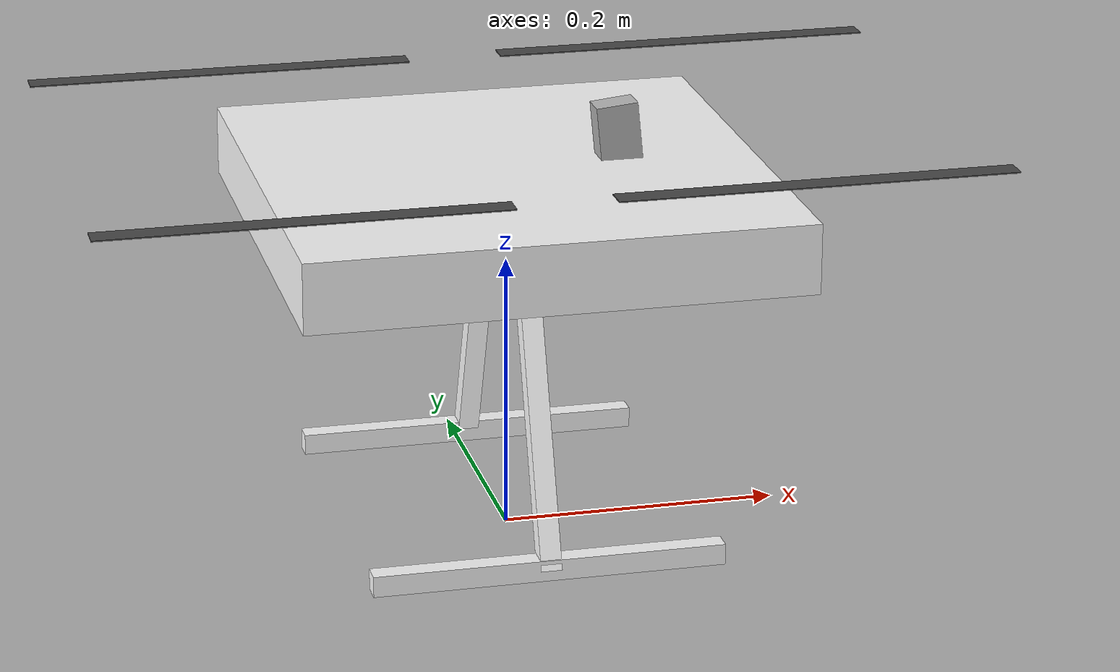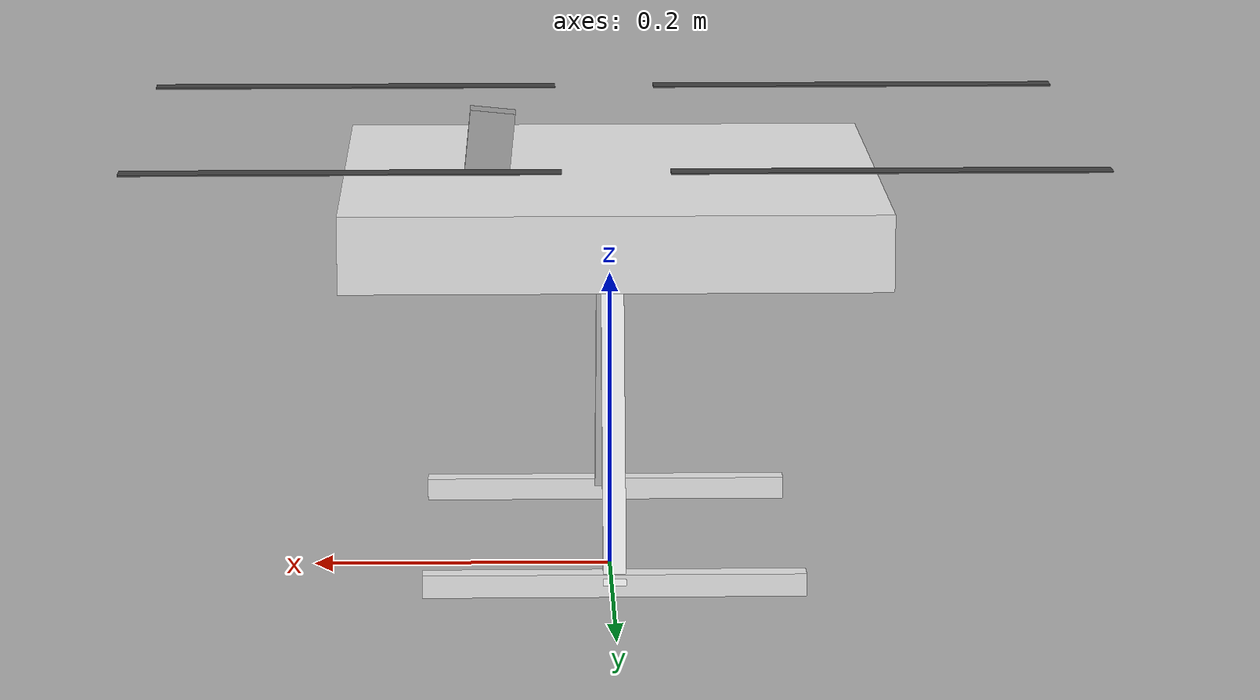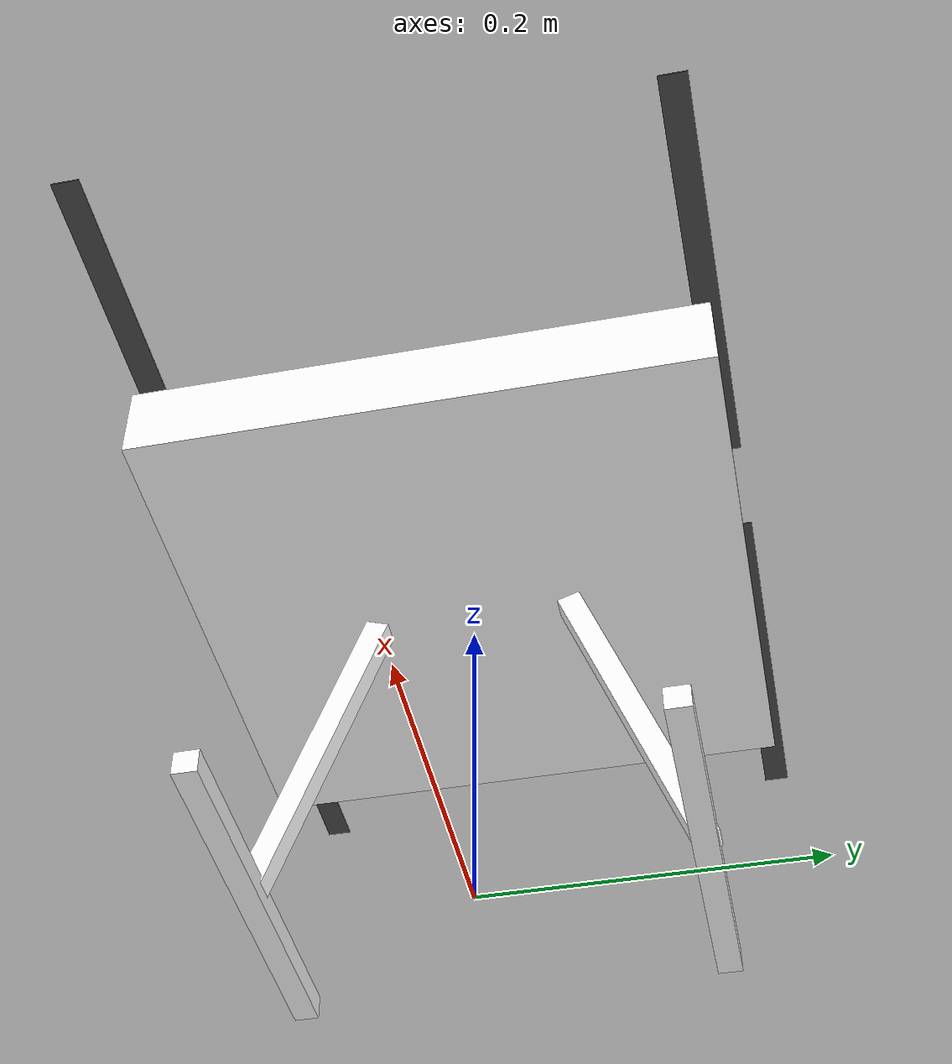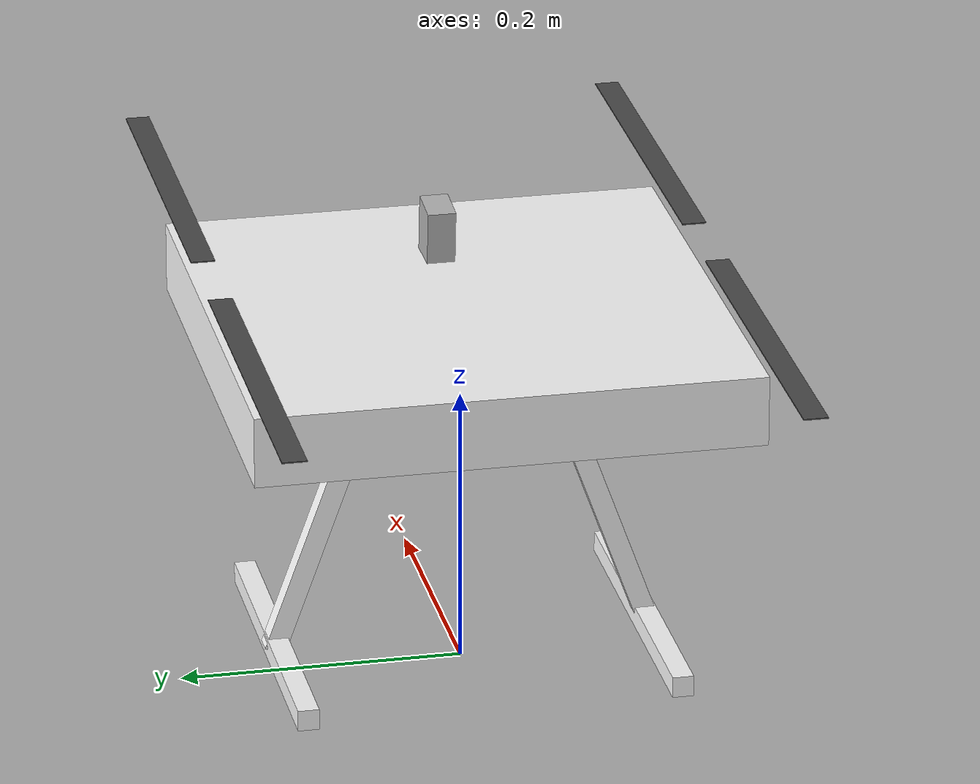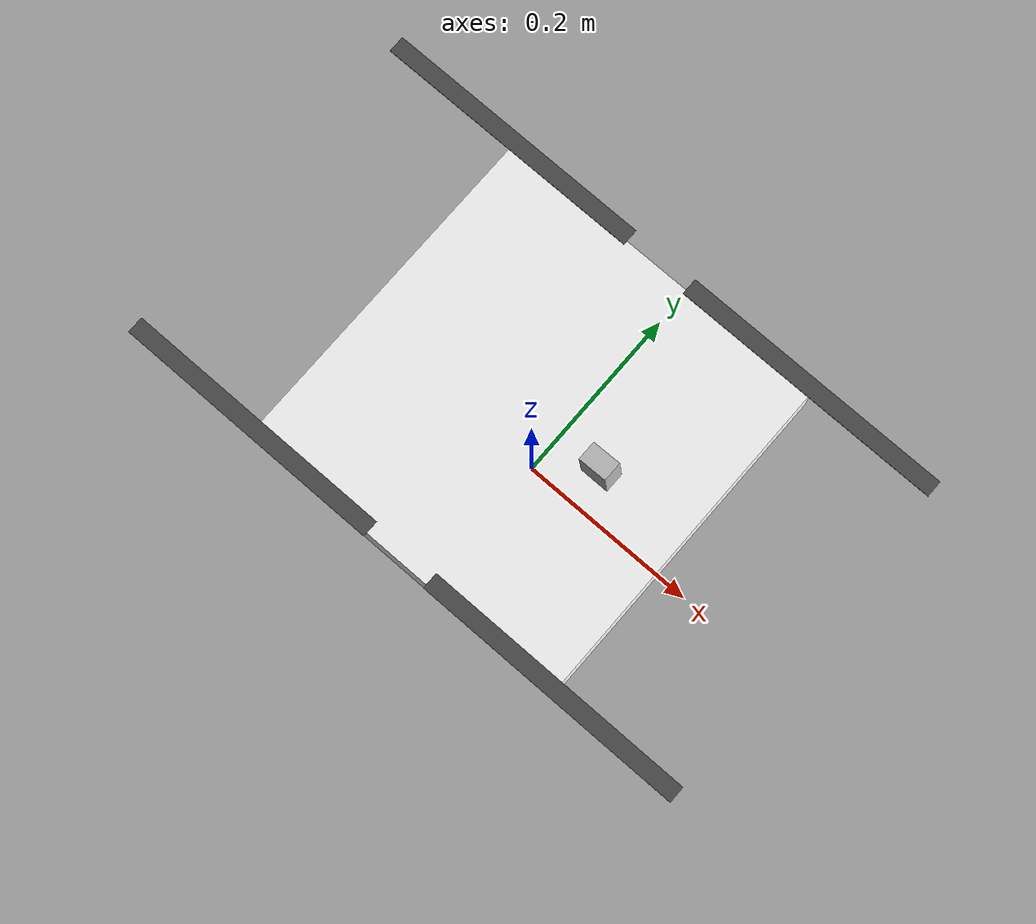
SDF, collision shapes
<?xml version="1.0" encoding="UTF-8"?>
<sdf version='1.9'>
  <model name='x500_base'>
<!-- ================== LW20 雷达，64线3D扫描安装在无人机正前方 ================== -->
<link name="lidar_sensor_link">
  <!-- Pose 相对于 base_link，放在无人机正前方并略向下倾 -->
  <pose relative_to="base_link">0.08 0 0.05 0 -0.1 0</pose>

  <!-- 惯性属性 -->
  <inertial>
    <mass>0.02</mass>
    <inertia>
      <ixx>0.000004</ixx>
      <iyy>0.000004</iyy>
      <izz>0.000002</izz>
      <ixy>0</ixy>
      <ixz>0</ixz>
      <iyz>0</iyz>
    </inertia>
  </inertial>

  <!-- 可视化模型 -->
  <visual name="lidar_visual">
    <geometry>
      <mesh>
        <uri>model://LW20/meshes/LW20.dae</uri>
      </mesh>
    </geometry>
  </visual>

  <!-- 碰撞体 -->
  <collision name="lidar_collision">
    <geometry>
      <box>
        <size>0.03 0.02 0.043</size>
      </box>
    </geometry>
  </collision>

  <!-- GPU LiDAR 传感器，64线3D扫描 -->
  <sensor name="front_lidar" type="gpu_lidar">
    <gz_frame_id>lidar_sensor_link</gz_frame_id>
    <update_rate>50</update_rate>

    <ray>
      <scan>
        <horizontal>
          <samples>360</samples> <!-- 水平360°扫描 -->
          <min_angle>-3.14</min_angle>
          <max_angle>3.14</max_angle>
        </horizontal>
        <vertical>
          <samples>64</samples> <!-- 垂直64线形成3D扫描 -->
          <min_angle>-0.35</min_angle> <!-- -20°，向下可见地面 -->
          <max_angle>0.35</max_angle>  <!-- +20°，向上可见障碍 -->
        </vertical>
      </scan>

      <range>
        <min>0.2</min>
        <max>20</max>
        <resolution>0.01</resolution>
      </range>
    </ray>

    <always_on>1</always_on>
    <visualize>true</visualize>
  </sensor>
</link>

<!-- 固定 joint，雷达随无人机移动 -->
<joint name="lidar_joint" type="fixed">
  <parent>base_link</parent>
  <child>lidar_sensor_link</child>
  <pose>0 0 0 0 0 0</pose>
</joint>
<!-- ================== LW20 雷达结束 ================== -->
    <pose>0 0 .24 0 0 0</pose>
    <self_collide>false</self_collide>
    <static>false</static>
    <link name="base_link">
      <inertial>
        <mass>2.0</mass>
        <inertia>
          <ixx>0.02166666666666667</ixx>
          <ixy>0</ixy>
          <ixz>0</ixz>
          <iyy>0.02166666666666667</iyy>
          <iyz>0</iyz>
          <izz>0.04000000000000001</izz>
        </inertia>
      </inertial>
      <gravity>true</gravity>
      <velocity_decay/>
      <visual name="base_link_visual">
        <pose>0 0 .025 0 0 3.141592654</pose>
        <geometry>
          <mesh>
            <scale>1 1 1</scale>
            <uri>model://x500_base/meshes/NXP-HGD-CF.dae</uri>
          </mesh>
        </geometry>
      </visual>
      <visual name="5010_motor_base_0">
        <pose>0.174 0.174 .032 0 0 -.45</pose>
        <geometry>
          <mesh>
            <scale>1 1 1</scale>
            <uri>model://x500_base/meshes/5010Base.dae</uri>
          </mesh>
        </geometry>
      </visual>
      <visual name="5010_motor_base_1">
        <pose>-0.174 0.174 .032 0 0 -.45</pose>
        <geometry>
          <mesh>
            <scale>1 1 1</scale>
            <uri>model://x500_base/meshes/5010Base.dae</uri>
          </mesh>
        </geometry>
      </visual>
      <visual name="5010_motor_base_2">
        <pose>0.174 -0.174 .032 0 0 -.45</pose>
        <geometry>
          <mesh>
            <scale>1 1 1</scale>
            <uri>model://x500_base/meshes/5010Base.dae</uri>
          </mesh>
        </geometry>
      </visual>
      <visual name="5010_motor_base_3">
        <pose>-0.174 -0.174 .032 0 0 -.45</pose>
        <geometry>
          <mesh>
            <scale>1 1 1</scale>
            <uri>model://x500_base/meshes/5010Base.dae</uri>
          </mesh>
        </geometry>
      </visual>
      <visual name="NXP_FMUK66_FRONT">
        <pose>0.047 .001 .043 1 0 1.57</pose>
        <cast_shadows>false</cast_shadows>
        <geometry>
          <plane>
            <normal>0 0 1</normal>
            <size>.013 .007</size>
          </plane>
        </geometry>
        <material>
          <diffuse>1.0 1.0 1.0</diffuse>
          <specular>1.0 1.0 1.0</specular>
          <pbr>
            <metal>
              <albedo_map>model://x500_base/materials/textures/nxp.png</albedo_map>
            </metal>
          </pbr>
        </material>
      </visual>
      <visual name="NXP_FMUK66_TOP">
        <pose>-0.023 0 .0515 0 0 -1.57</pose>
        <cast_shadows>false</cast_shadows>
        <geometry>
          <plane>
            <normal>0 0 1</normal>
            <size>.013 .007</size>
          </plane>
        </geometry>
        <material>
          <diffuse>1.0 1.0 1.0</diffuse>
          <specular>1.0 1.0 1.0</specular>
          <pbr>
            <metal>
              <albedo_map>model://x500_base/materials/textures/nxp.png</albedo_map>
            </metal>
          </pbr>
        </material>
      </visual>
      <visual name="RDDRONE_FMUK66_TOP">
        <pose>-.03 0 .0515 0 0 -1.57</pose>
        <cast_shadows>false</cast_shadows>
        <geometry>
          <plane>
            <normal>0 0 1</normal>
            <size>.032 .0034</size>
          </plane>
        </geometry>
        <material>
          <diffuse>1.0 1.0 1.0</diffuse>
          <specular>1.0 1.0 1.0</specular>
          <pbr>
            <metal>
              <albedo_map>model://x500_base/materials/textures/rd.png</albedo_map>
            </metal>
          </pbr>
        </material>
      </visual>
      <collision name="base_link_collision_0">
        <pose>0 0 .007 0 0 0</pose>
        <geometry>
          <box>
            <size>0.35355339059327373 0.35355339059327373 0.05</size>
          </box>
        </geometry>
        <surface>
          <contact>
            <ode>
              <min_depth>0.001</min_depth>
              <max_vel>0</max_vel>
            </ode>
          </contact>
          <friction>
            <ode/>
          </friction>
        </surface>
      </collision>
      <collision name="base_link_collision_1">
        <pose>0 -0.098 -.123 -0.35 0 0</pose>
        <geometry>
          <box>
            <size>0.015 0.015 0.21</size>
          </box>
        </geometry>
        <surface>
          <contact>
            <ode>
              <min_depth>0.001</min_depth>
              <max_vel>0</max_vel>
            </ode>
          </contact>
          <friction>
            <ode/>
          </friction>
        </surface>
      </collision>
      <collision name="base_link_collision_2">
        <pose>0 0.098 -.123 0.35 0 0</pose>
        <geometry>
          <box>
            <size>0.015 0.015 0.21</size>
          </box>
        </geometry>
        <surface>
          <contact>
            <ode>
              <min_depth>0.001</min_depth>
              <max_vel>0</max_vel>
            </ode>
          </contact>
          <friction>
            <ode/>
          </friction>
        </surface>
      </collision>
      <collision name="base_link_collision_3">
        <pose>0 -0.132 -.2195 0 0 0</pose>
        <geometry>
          <box>
            <size>0.25 0.015 0.015</size>
          </box>
        </geometry>
        <surface>
          <contact>
            <ode>
              <min_depth>0.001</min_depth>
              <max_vel>0</max_vel>
            </ode>
          </contact>
          <friction>
            <ode/>
          </friction>
        </surface>
      </collision>
      <collision name="base_link_collision_4">
        <pose>0 0.132 -.2195 0 0 0</pose>
        <geometry>
          <box>
            <size>0.25 0.015 0.015</size>
          </box>
        </geometry>
        <surface>
          <contact>
            <ode>
              <min_depth>0.001</min_depth>
              <max_vel>0</max_vel>
            </ode>
          </contact>
          <friction>
            <ode/>
          </friction>
        </surface>
      </collision>
      <sensor name="air_pressure_sensor" type="air_pressure">
        <always_on>1</always_on>
        <update_rate>50</update_rate>
        <air_pressure>
          <pressure>
            <noise type="gaussian">
              <mean>0</mean>
              <stddev>0.01</stddev>
            </noise>
          </pressure>
        </air_pressure>
      </sensor>
      <sensor name="imu_sensor" type="imu">
        <always_on>1</always_on>
        <update_rate>250</update_rate>
        <imu>
          <angular_velocity>
            <x>
              <noise type="gaussian">
                <mean>0</mean>
                <stddev>0.00018665</stddev>
                <dynamic_bias_stddev>3.8785e-05</dynamic_bias_stddev>
                <dynamic_bias_correlation_time>1000</dynamic_bias_correlation_time>
              </noise>
            </x>
            <y>
              <noise type="gaussian">
                <mean>0</mean>
                <stddev>0.00018665</stddev>
                <dynamic_bias_stddev>3.8785e-05</dynamic_bias_stddev>
                <dynamic_bias_correlation_time>1000</dynamic_bias_correlation_time>
              </noise>
            </y>
            <z>
              <noise type="gaussian">
                <mean>0</mean>
                <stddev>0.00018665</stddev>
                <dynamic_bias_stddev>3.8785e-05</dynamic_bias_stddev>
                <dynamic_bias_correlation_time>1000</dynamic_bias_correlation_time>
              </noise>
            </z>
          </angular_velocity>
          <linear_acceleration>
            <x>
              <noise type="gaussian">
                <mean>0</mean>
                <stddev>0.00186</stddev>
                <dynamic_bias_stddev>0.006</dynamic_bias_stddev>
                <dynamic_bias_correlation_time>300</dynamic_bias_correlation_time>
              </noise>
            </x>
            <y>
              <noise type="gaussian">
                <mean>0</mean>
                <stddev>0.00186</stddev>
                <dynamic_bias_stddev>0.006</dynamic_bias_stddev>
                <dynamic_bias_correlation_time>300</dynamic_bias_correlation_time>
              </noise>
            </y>
            <z>
              <noise type="gaussian">
                <mean>0</mean>
                <stddev>0.00186</stddev>
                <dynamic_bias_stddev>0.006</dynamic_bias_stddev>
                <dynamic_bias_correlation_time>300</dynamic_bias_correlation_time>
              </noise>
            </z>
          </linear_acceleration>
        </imu>
      </sensor>
      <sensor name="navsat_sensor" type="navsat">
        <always_on>1</always_on>
        <update_rate>30</update_rate>
      </sensor>
    </link>
    <link name="rotor_0">
      <gravity>true</gravity>
      <self_collide>false</self_collide>
      <velocity_decay/>
      <pose>0.174 -0.174 0.06 0 0 0</pose>
      <inertial>
          <mass>0.016076923076923075</mass>
          <inertia>
            <ixx>3.8464910483993325e-07</ixx>
            <iyy>2.6115851691700804e-05</iyy>
            <izz>2.649858234714004e-05</izz>
          </inertia>
        </inertial>
      <visual name="rotor_0_visual">
        <pose>-0.022 -0.14638461538461536 -0.016 0 0 0</pose>
        <geometry>
          <mesh>
            <scale>0.8461538461538461 0.8461538461538461 0.8461538461538461</scale>
            <uri>model://x500_base/meshes/1345_prop_ccw.stl</uri>
          </mesh>
        </geometry>
        <material>
          <script>
            <name>Gazebo/DarkGrey</name>
            <uri>file://media/materials/scripts/gazebo.material</uri>
          </script>
        </material>
      </visual>
      <visual name="rotor_0_visual_motor_bell">
        <pose>0 0 -.032 0 0 0</pose>
        <geometry>
          <mesh>
            <scale>1 1 1</scale>
            <uri>model://x500_base/meshes/5010Bell.dae</uri>
          </mesh>
        </geometry>
      </visual>
      <collision name="rotor_0_collision">
        <pose>0 0 0 0 0 0 </pose>
        <geometry>
          <box>
            <size>0.2792307692307692 0.016923076923076923 0.0008461538461538462</size>
          </box>
        </geometry>
        <surface>
          <contact>
            <ode>
              <min_depth>0.001</min_depth>
              <max_vel>0</max_vel>
            </ode>
          </contact>
          <friction>
            <ode/>
          </friction>
        </surface>
      </collision>
    </link>
    <joint name="rotor_0_joint" type="revolute">
      <parent>base_link</parent>
      <child>rotor_0</child>
      <axis>
        <xyz>0 0 1</xyz>
        <limit>
          <lower>-1e+16</lower>
          <upper>1e+16</upper>
        </limit>
        <dynamics>
          <spring_reference>0</spring_reference>
          <spring_stiffness>0</spring_stiffness>
        </dynamics>
      </axis>
    </joint>
    <link name="rotor_1">
      <gravity>true</gravity>
      <self_collide>false</self_collide>
      <velocity_decay/>
      <pose>-0.174 0.174 0.06 0 0 0</pose>
      <inertial>
          <mass>0.016076923076923075</mass>
          <inertia>
            <ixx>3.8464910483993325e-07</ixx>
            <iyy>2.6115851691700804e-05</iyy>
            <izz>2.649858234714004e-05</izz>
          </inertia>
        </inertial>
      <visual name="rotor_1_visual">
        <pose>-0.022 -0.14638461538461536 -0.016 0 0 0</pose>
        <geometry>
          <mesh>
            <scale>0.8461538461538461 0.8461538461538461 0.8461538461538461</scale>
            <uri>model://x500_base/meshes/1345_prop_ccw.stl</uri>
          </mesh>
        </geometry>
        <material>
          <script>
            <name>Gazebo/DarkGrey</name>
            <uri>file://media/materials/scripts/gazebo.material</uri>
          </script>
        </material>
      </visual>
      <visual name="rotor_1_visual_motor_top">
        <pose>0 0 -.032 0 0 0</pose>
        <geometry>
          <mesh>
            <scale>1 1 1</scale>
            <uri>model://x500_base/meshes/5010Bell.dae</uri>
          </mesh>
        </geometry>
      </visual>
      <collision name="rotor_1_collision">
        <pose>0 0 0 0 0 0 </pose>
        <geometry>
          <box>
            <size>0.2792307692307692 0.016923076923076923 0.0008461538461538462</size>
          </box>
        </geometry>
        <surface>
          <contact>
            <ode>
              <min_depth>0.001</min_depth>
              <max_vel>0</max_vel>
            </ode>
          </contact>
          <friction>
            <ode/>
          </friction>
        </surface>
      </collision>
    </link>
    <joint name="rotor_1_joint" type="revolute">
      <parent>base_link</parent>
      <child>rotor_1</child>
      <axis>
        <xyz>0 0 1</xyz>
        <limit>
          <lower>-1e+16</lower>
          <upper>1e+16</upper>
        </limit>
        <dynamics>
          <spring_reference>0</spring_reference>
          <spring_stiffness>0</spring_stiffness>
        </dynamics>
      </axis>
    </joint>
    <link name="rotor_2">
      <gravity>true</gravity>
      <self_collide>false</self_collide>
      <velocity_decay/>
      <pose>0.174 0.174 0.06 0 0 0</pose>
      <inertial>
          <mass>0.016076923076923075</mass>
          <inertia>
            <ixx>3.8464910483993325e-07</ixx>
            <iyy>2.6115851691700804e-05</iyy>
            <izz>2.649858234714004e-05</izz>
          </inertia>
        </inertial>
      <visual name="rotor_2_visual">
        <pose>-0.022 -0.14638461538461536 -0.016 0 0 0</pose>
        <geometry>
          <mesh>
            <scale>0.8461538461538461 0.8461538461538461 0.8461538461538461</scale>
            <uri>model://x500_base/meshes/1345_prop_cw.stl</uri>
          </mesh>
        </geometry>
        <material>
          <script>
            <name>Gazebo/DarkGrey</name>
            <uri>file://media/materials/scripts/gazebo.material</uri>
          </script>
        </material>
      </visual>
      <visual name="rotor_2_visual_motor_top">
        <pose>0 0 -.032 0 0 0</pose>
        <geometry>
          <mesh>
            <scale>1 1 1</scale>
            <uri>model://x500_base/meshes/5010Bell.dae</uri>
          </mesh>
        </geometry>
      </visual>
      <collision name="rotor_2_collision">
        <pose>0 0 0 0 0 0 </pose>
        <geometry>
          <box>
            <size>0.2792307692307692 0.016923076923076923 0.0008461538461538462</size>
          </box>
        </geometry>
        <surface>
          <contact>
            <ode>
              <min_depth>0.001</min_depth>
              <max_vel>0</max_vel>
            </ode>
          </contact>
          <friction>
            <ode/>
          </friction>
        </surface>
      </collision>
    </link>
    <joint name="rotor_2_joint" type="revolute">
      <parent>base_link</parent>
      <child>rotor_2</child>
      <axis>
        <xyz>0 0 1</xyz>
        <limit>
          <lower>-1e+16</lower>
          <upper>1e+16</upper>
        </limit>
        <dynamics>
          <spring_reference>0</spring_reference>
          <spring_stiffness>0</spring_stiffness>
        </dynamics>
      </axis>
    </joint>
    <link name="rotor_3">
      <gravity>true</gravity>
      <self_collide>false</self_collide>
      <velocity_decay/>
      <pose>-0.174 -0.174 0.06 0 0 0</pose>
      <inertial>
          <mass>0.016076923076923075</mass>
          <inertia>
            <ixx>3.8464910483993325e-07</ixx>
            <iyy>2.6115851691700804e-05</iyy>
            <izz>2.649858234714004e-05</izz>
          </inertia>
        </inertial>
      <visual name="rotor_3_visual">
        <pose>-0.022 -0.14638461538461536 -0.016 0 0 0</pose>
        <geometry>
          <mesh>
            <scale>0.8461538461538461 0.8461538461538461 0.8461538461538461</scale>
            <uri>model://x500_base/meshes/1345_prop_cw.stl</uri>
          </mesh>
        </geometry>
        <material>
          <script>
            <name>Gazebo/DarkGrey</name>
            <uri>file://media/materials/scripts/gazebo.material</uri>
          </script>
        </material>
      </visual>
      <visual name="rotor_3_visual_motor_top">
        <pose>0 0 -.032 0 0 0</pose>
        <geometry>
          <mesh>
            <scale>1 1 1</scale>
            <uri>model://x500_base/meshes/5010Bell.dae</uri>
          </mesh>
        </geometry>
      </visual>
      <collision name="rotor_3_collision">
        <pose>0 0 0 0 0 0 </pose>
        <geometry>
          <box>
            <size>0.2792307692307692 0.016923076923076923 0.0008461538461538462</size>
          </box>
        </geometry>
        <surface>
          <contact>
            <ode>
              <min_depth>0.001</min_depth>
              <max_vel>0</max_vel>
            </ode>
          </contact>
          <friction>
            <ode/>
          </friction>
        </surface>
      </collision>
    </link>
    <joint name="rotor_3_joint" type="revolute">
      <parent>base_link</parent>
      <child>rotor_3</child>
      <axis>
        <xyz>0 0 1</xyz>
        <limit>
          <lower>-1e+16</lower>
          <upper>1e+16</upper>
        </limit>
        <dynamics>
          <spring_reference>0</spring_reference>
          <spring_stiffness>0</spring_stiffness>
        </dynamics>
      </axis>
    </joint>
  </model>
</sdf>
